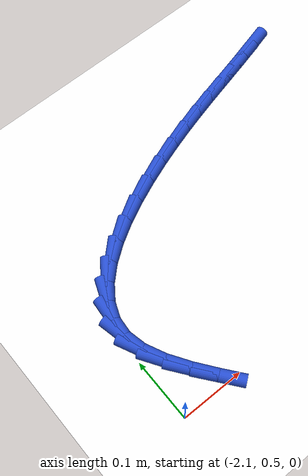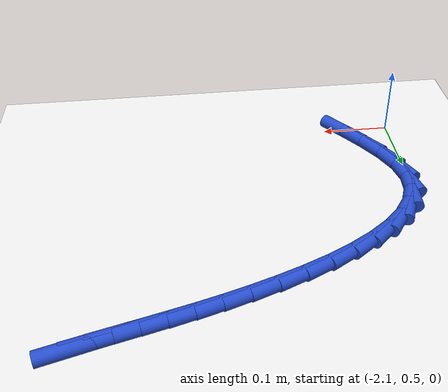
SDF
<sdf version="1.6">
 <world name="default">
  <model name="ground_plane">
   <static>1</static>
   <link name="link">
    <collision name="collision">
     <geometry><plane><normal>0 0 1</normal><size>100 100</size></plane></geometry>
     <surface><friction><ode><mu>100</mu><mu2>50</mu2></ode></friction></surface>
    </collision>
    <visual name="visual">
     <cast_shadows>0</cast_shadows>
     <geometry><plane><normal>0 0 1</normal><size>100 100</size></plane></geometry>
     <material>
      <script><uri>file://media/materials/scripts/gazebo.material</uri><name>Gazebo/WhiteGlow</name></script>
     </material>
    </visual>
   </link>
  </model>
  <model name="line">
   <link name="link_84">
    <pose>-1.6352504955658314 0.8932505648826652 0.01 0 1.57 0.2653698164891366</pose>
    <collision name="collision">
     <geometry><cylinder><radius>0.01</radius><length>0.08</length></cylinder></geometry>
    </collision>
    <visual name="visual">
     <material>
      <script><name>Gazebo/Blue</name><uri>file://media/materials/scripts/gazebo.material</uri></script>
     </material>
     <geometry><cylinder><radius>0.01</radius><length>0.08</length></cylinder></geometry>
    </visual>
   </link>
   <link name="link_85">
    <pose>-1.6631198060143013 0.8856762535208391 0.01 0 1.57 0.2515152519439715</pose>
    <collision name="collision">
     <geometry><cylinder><radius>0.01</radius><length>0.08</length></cylinder></geometry>
    </collision>
    <visual name="visual">
     <material>
      <script><name>Gazebo/Blue</name><uri>file://media/materials/scripts/gazebo.material</uri></script>
     </material>
     <geometry><cylinder><radius>0.01</radius><length>0.08</length></cylinder></geometry>
    </visual>
   </link>
   <link name="link_86">
    <pose>-1.6914739602210738 0.8783904666643333 0.01 0 1.57 0.24638928143197344</pose>
    <collision name="collision">
     <geometry><cylinder><radius>0.01</radius><length>0.08</length></cylinder></geometry>
    </collision>
    <visual name="visual">
     <material>
      <script><name>Gazebo/Blue</name><uri>file://media/materials/scripts/gazebo.material</uri></script>
     </material>
     <geometry><cylinder><radius>0.01</radius><length>0.08</length></cylinder></geometry>
    </visual>
   </link>
   <link name="link_87">
    <pose>-1.720427280110602 0.8711087266411859 0.01 0 1.57 0.2495883010160339</pose>
    <collision name="collision">
     <geometry><cylinder><radius>0.01</radius><length>0.08</length></cylinder></geometry>
    </collision>
    <visual name="visual">
     <material>
      <script><name>Gazebo/Blue</name><uri>file://media/materials/scripts/gazebo.material</uri></script>
     </material>
     <geometry><cylinder><radius>0.01</radius><length>0.08</length></cylinder></geometry>
    </visual>
   </link>
   <link name="link_88">
    <pose>-1.7500940876073376 0.8635465557794354 0.01 0 1.57 0.26045486478145613</pose>
    <collision name="collision">
     <geometry><cylinder><radius>0.01</radius><length>0.08</length></cylinder></geometry>
    </collision>
    <visual name="visual">
     <material>
      <script><name>Gazebo/Blue</name><uri>file://media/materials/scripts/gazebo.material</uri></script>
     </material>
     <geometry><cylinder><radius>0.01</radius><length>0.08</length></cylinder></geometry>
    </visual>
   </link>
   <link name="link_89">
    <pose>-1.780588704635734 0.8554194764071203 0.01 0 1.57 0.2781390016486432</pose>
    <collision name="collision">
     <geometry><cylinder><radius>0.01</radius><length>0.08</length></cylinder></geometry>
    </collision>
    <visual name="visual">
     <material>
      <script><name>Gazebo/Blue</name><uri>file://media/materials/scripts/gazebo.material</uri></script>
     </material>
     <geometry><cylinder><radius>0.01</radius><length>0.08</length></cylinder></geometry>
    </visual>
   </link>
   <link name="link_90">
    <pose>-1.8120254531202447 0.8464430108522794 0.01 0 1.57 0.30165645716671113</pose>
    <collision name="collision">
     <geometry><cylinder><radius>0.01</radius><length>0.08</length></cylinder></geometry>
    </collision>
    <visual name="visual">
     <material>
      <script><name>Gazebo/Blue</name><uri>file://media/materials/scripts/gazebo.material</uri></script>
     </material>
     <geometry><cylinder><radius>0.01</radius><length>0.08</length></cylinder></geometry>
    </visual>
   </link>
   <link name="link_91">
    <pose>-1.84451865498532 0.8363326814429503 0.01 0 1.57 0.3299471698610086</pose>
    <collision name="collision">
     <geometry><cylinder><radius>0.01</radius><length>0.08</length></cylinder></geometry>
    </collision>
    <visual name="visual">
     <material>
      <script><name>Gazebo/Blue</name><uri>file://media/materials/scripts/gazebo.material</uri></script>
     </material>
     <geometry><cylinder><radius>0.01</radius><length>0.08</length></cylinder></geometry>
    </visual>
   </link>
   <link name="link_92">
    <pose>-1.878182034880253 0.8248041237614532 0.01 0 1.57 0.3633998663661733</pose>
    <collision name="collision">
     <geometry><cylinder><radius>0.01</radius><length>0.08</length></cylinder></geometry>
    </collision>
    <visual name="visual">
     <material>
      <script><name>Gazebo/Blue</name><uri>file://media/materials/scripts/gazebo.material</uri></script>
     </material>
     <geometry><cylinder><radius>0.01</radius><length>0.08</length></cylinder></geometry>
    </visual>
   </link>
   <link name="link_93">
    <pose>-1.9128202479317586 0.8116315786173293 0.01 0 1.57 0.40629773396009855</pose>
    <collision name="collision">
     <geometry><cylinder><radius>0.01</radius><length>0.08</length></cylinder></geometry>
    </collision>
    <visual name="visual">
     <material>
      <script><name>Gazebo/Blue</name><uri>file://media/materials/scripts/gazebo.material</uri></script>
     </material>
     <geometry><cylinder><radius>0.01</radius><length>0.08</length></cylinder></geometry>
    </visual>
   </link>
   <link name="link_94">
    <pose>-1.947424627373675 0.796743507507878 0.01 0 1.57 0.4620963587252304</pose>
    <collision name="collision">
     <geometry><cylinder><radius>0.01</radius><length>0.08</length></cylinder></geometry>
    </collision>
    <visual name="visual">
     <material>
      <script><name>Gazebo/Blue</name><uri>file://media/materials/scripts/gazebo.material</uri></script>
     </material>
     <geometry><cylinder><radius>0.01</radius><length>0.08</length></cylinder></geometry>
    </visual>
   </link>
   <link name="link_95">
    <pose>-1.980854308291742 0.7800934391141285 0.01 0 1.57 0.5354435452665401</pose>
    <collision name="collision">
     <geometry><cylinder><radius>0.01</radius><length>0.08</length></cylinder></geometry>
    </collision>
    <visual name="visual">
     <material>
      <script><name>Gazebo/Blue</name><uri>file://media/materials/scripts/gazebo.material</uri></script>
     </material>
     <geometry><cylinder><radius>0.01</radius><length>0.08</length></cylinder></geometry>
    </visual>
   </link>
   <link name="link_96">
    <pose>-2.0119684257716997 0.7616349021171103 0.01 0 1.57 0.6334813484786501</pose>
    <collision name="collision">
     <geometry><cylinder><radius>0.01</radius><length>0.08</length></cylinder></geometry>
    </collision>
    <visual name="visual">
     <material>
      <script><name>Gazebo/Blue</name><uri>file://media/materials/scripts/gazebo.material</uri></script>
     </material>
     <geometry><cylinder><radius>0.01</radius><length>0.08</length></cylinder></geometry>
    </visual>
   </link>
   <link name="link_97">
    <pose>-2.039626114899287 0.7413214251978523 0.01 0 1.57 0.7667255156298677</pose>
    <collision name="collision">
     <geometry><cylinder><radius>0.01</radius><length>0.08</length></cylinder></geometry>
    </collision>
    <visual name="visual">
     <material>
      <script><name>Gazebo/Blue</name><uri>file://media/materials/scripts/gazebo.material</uri></script>
     </material>
     <geometry><cylinder><radius>0.01</radius><length>0.08</length></cylinder></geometry>
    </visual>
   </link>
   <link name="link_98">
    <pose>-2.062686510760245 0.719106537037384 0.01 0 1.57 0.9488193385253628</pose>
    <collision name="collision">
     <geometry><cylinder><radius>0.01</radius><length>0.08</length></cylinder></geometry>
    </collision>
    <visual name="visual">
     <material>
      <script><name>Gazebo/Blue</name><uri>file://media/materials/scripts/gazebo.material</uri></script>
     </material>
     <geometry><cylinder><radius>0.01</radius><length>0.08</length></cylinder></geometry>
    </visual>
   </link>
   <link name="link_99">
    <pose>-2.0800087484403122 0.6949437663167343 0.01 0 1.57 1.190937242706563</pose>
    <collision name="collision">
     <geometry><cylinder><radius>0.01</radius><length>0.08</length></cylinder></geometry>
    </collision>
    <visual name="visual">
     <material>
      <script><name>Gazebo/Blue</name><uri>file://media/materials/scripts/gazebo.material</uri></script>
     </material>
     <geometry><cylinder><radius>0.01</radius><length>0.08</length></cylinder></geometry>
    </visual>
   </link>
   <link name="link_100">
    <pose>-2.0904519630252287 0.6687866417169326 0.01 0 1.57 1.4850671534716038</pose>
    <collision name="collision">
     <geometry><cylinder><radius>0.01</radius><length>0.08</length></cylinder></geometry>
    </collision>
    <visual name="visual">
     <material>
      <script><name>Gazebo/Blue</name><uri>file://media/materials/scripts/gazebo.material</uri></script>
     </material>
     <geometry><cylinder><radius>0.01</radius><length>0.08</length></cylinder></geometry>
    </visual>
   </link>
   <link name="link_101">
    <pose>-2.092875289600735 0.6405886919190082 0.01 0 1.57 -1.3540035496205975</pose>
    <collision name="collision">
     <geometry><cylinder><radius>0.01</radius><length>0.08</length></cylinder></geometry>
    </collision>
    <visual name="visual">
     <material>
      <script><name>Gazebo/Blue</name><uri>file://media/materials/scripts/gazebo.material</uri></script>
     </material>
     <geometry><cylinder><radius>0.01</radius><length>0.08</length></cylinder></geometry>
    </visual>
   </link>
   <link name="link_102">
    <pose>-2.086209301236856 0.610323717559194 0.01 0 1.57 -1.1303763188354659</pose>
    <collision name="collision">
     <geometry><cylinder><radius>0.01</radius><length>0.08</length></cylinder></geometry>
    </collision>
    <visual name="visual">
     <material>
      <script><name>Gazebo/Blue</name><uri>file://media/materials/scripts/gazebo.material</uri></script>
     </material>
     <geometry><cylinder><radius>0.01</radius><length>0.08</length></cylinder></geometry>
    </visual>
   </link>
   <link name="link_103">
    <pose>-2.0712021692211655 0.5784812990792836 0.01 0 1.57 -1.0025076082343103</pose>
    <collision name="collision">
     <geometry><cylinder><radius>0.01</radius><length>0.08</length></cylinder></geometry>
    </collision>
    <visual name="visual">
     <material>
      <script><name>Gazebo/Blue</name><uri>file://media/materials/scripts/gazebo.material</uri></script>
     </material>
     <geometry><cylinder><radius>0.01</radius><length>0.08</length></cylinder></geometry>
    </visual>
   </link>
   <link name="link_104">
    <pose>-2.050522257105813 0.5460959098370627 0.01 0 1.57 -0.9335194048758954</pose>
    <collision name="collision">
     <geometry><cylinder><radius>0.01</radius><length>0.08</length></cylinder></geometry>
    </collision>
    <visual name="visual">
     <material>
      <script><name>Gazebo/Blue</name><uri>file://media/materials/scripts/gazebo.material</uri></script>
     </material>
     <geometry><cylinder><radius>0.01</radius><length>0.08</length></cylinder></geometry>
    </visual>
   </link>
   <link name="link_105">
    <pose>-2.0269299046320697 0.5142281232714478 0.01 0 1.57 -0.9059411041118517</pose>
    <collision name="collision">
     <geometry><cylinder><radius>0.01</radius><length>0.08</length></cylinder></geometry>
    </collision>
    <visual name="visual">
     <material>
      <script><name>Gazebo/Blue</name><uri>file://media/materials/scripts/gazebo.material</uri></script>
     </material>
     <geometry><cylinder><radius>0.01</radius><length>0.08</length></cylinder></geometry>
    </visual>
   </link>
  </model>
 </world>
</sdf>
